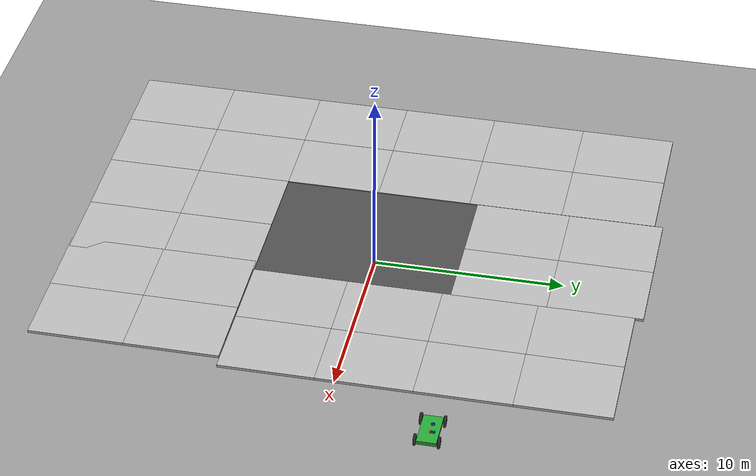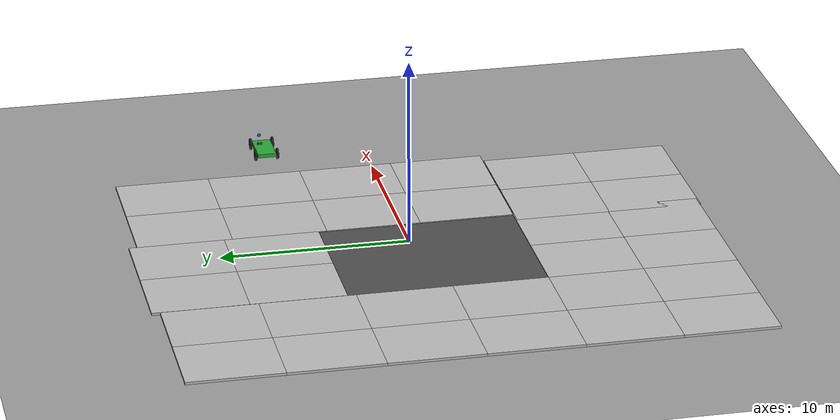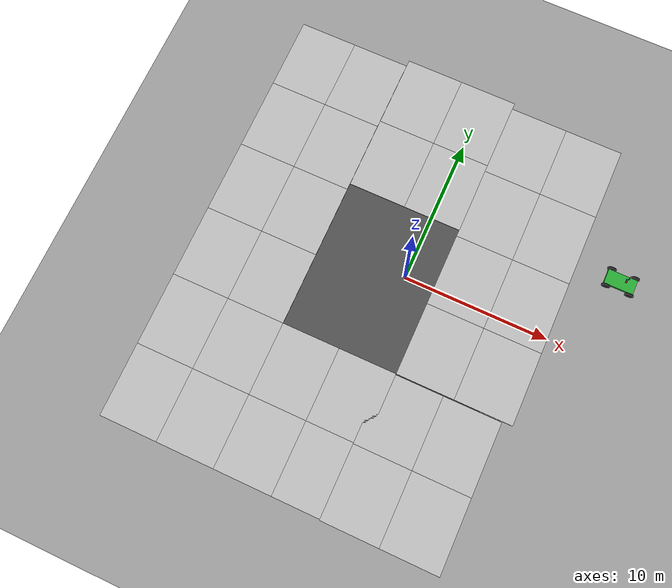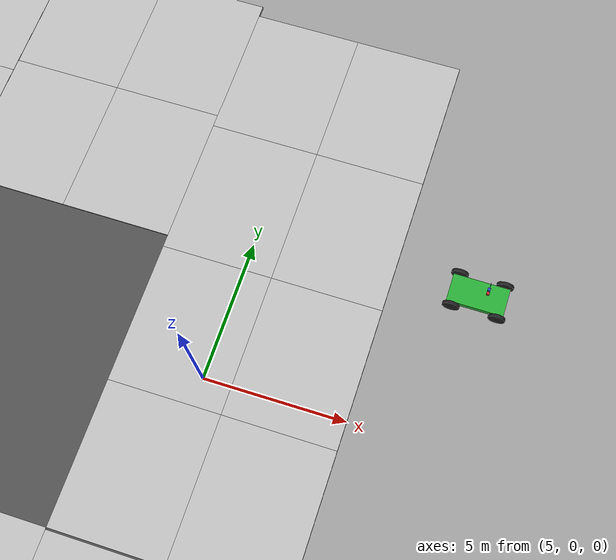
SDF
<sdf version="1.4">
 <world name="default">
  <light name="sun" type="directional">
   <pose>0 0 10 0 -0 0</pose>
   <diffuse>0.8 0.8 0.8 1</diffuse>
   <specular>0.2 0.2 0.2 1</specular>
   <attenuation>
    <range>1000</range>
    <constant>0.9</constant>
    <linear>0.01</linear>
    <quadratic>0.001</quadratic>
   </attenuation>
   <direction>-0.5 0.1 -0.9</direction>
  </light>
  <physics type="ode">
   <max_step_size>0.001</max_step_size>
   <real_time_factor>1</real_time_factor>
   <real_time_update_rate>1000</real_time_update_rate>
   <gravity>0 0 -9.8</gravity>
  </physics>
  <scene><ambient>0.4 0.4 0.4 1</ambient><background>0.7 0.7 0.7 1</background><shadows>1</shadows></scene>
  <spherical_coordinates>
   <surface_model>EARTH_WGS84</surface_model>
   <latitude_deg>0</latitude_deg>
   <longitude_deg>0</longitude_deg>
   <elevation>0</elevation>
   <heading_deg>0</heading_deg>
  </spherical_coordinates>
  <model name="ground_plane_0">
   <static>1</static>
   <link name="link">
    <collision name="collision">
     <geometry><plane><normal>0 0 1</normal><size>100 100</size></plane></geometry>
     <surface><friction><ode><mu>100</mu><mu2>50</mu2></ode></friction></surface>
    </collision>
    <visual name="visual">
     <cast_shadows>0</cast_shadows>
     <geometry><plane><normal>0 0 1</normal><size>100 100</size></plane></geometry>
     <material>
      <script><uri>file://media/materials/scripts/gazebo.material</uri><name>Gazebo/Grey</name></script>
     </material>
    </visual>
    <velocity_decay><linear>0</linear><angular>0</angular></velocity_decay>
   </link>
   <pose>-1 0 0 0 -0 0</pose>
  </model>
  <model name="mud_box">
   <static>1</static>
   <link name="link">
    <collision name="collision"><geometry><box><size>8 10 0.2</size></box></geometry></collision>
    <visual name="visual_1">
     <pose>-2 2.5 0 0 -0 0</pose>
     <cast_shadows>0</cast_shadows>
     <geometry><box><size>4 5 0.2</size></box></geometry>
     <material>
      <script>
       <uri>model://mud_box/materials/scripts</uri>
       <uri>model://mud_box/materials/textures</uri>
       <name>vrc/mud</name>
      </script>
     </material>
    </visual>
    <visual name="visual_2">
     <pose>2 2.5 0 0 -0 0</pose>
     <cast_shadows>0</cast_shadows>
     <geometry><box><size>4 5 0.2</size></box></geometry>
     <material>
      <script>
       <uri>model://mud_box/materials/scripts</uri>
       <uri>model://mud_box/materials/textures</uri>
       <name>vrc/mud</name>
      </script>
     </material>
    </visual>
    <visual name="visual_3">
     <pose>2 -2.5 0 0 -0 0</pose>
     <cast_shadows>0</cast_shadows>
     <geometry><box><size>4 5 0.2</size></box></geometry>
     <material>
      <script>
       <uri>model://mud_box/materials/scripts</uri>
       <uri>model://mud_box/materials/textures</uri>
       <name>vrc/mud</name>
      </script>
     </material>
    </visual>
    <visual name="visual_4">
     <pose>-2 -2.5 0 0 -0 0</pose>
     <cast_shadows>0</cast_shadows>
     <geometry><box><size>4 5 0.2</size></box></geometry>
     <material>
      <script>
       <uri>model://mud_box/materials/scripts</uri>
       <uri>model://mud_box/materials/textures</uri>
       <name>vrc/mud</name>
      </script>
     </material>
    </visual>
    <velocity_decay><linear>0</linear><angular>0</angular></velocity_decay>
   </link>
   <pose>6 -1 0 0 -0 0</pose>
  </model>
  <model name="mud_box_0">
   <static>1</static>
   <link name="link">
    <collision name="collision"><geometry><box><size>8 10 0.2</size></box></geometry></collision>
    <visual name="visual_1">
     <pose>-2 2.5 0 0 -0 0</pose>
     <cast_shadows>0</cast_shadows>
     <geometry><box><size>4 5 0.2</size></box></geometry>
     <material>
      <script>
       <uri>model://mud_box/materials/scripts</uri>
       <uri>model://mud_box/materials/textures</uri>
       <name>vrc/mud</name>
      </script>
     </material>
    </visual>
    <visual name="visual_2">
     <pose>2 2.5 0 0 -0 0</pose>
     <cast_shadows>0</cast_shadows>
     <geometry><box><size>4 5 0.2</size></box></geometry>
     <material>
      <script>
       <uri>model://mud_box/materials/scripts</uri>
       <uri>model://mud_box/materials/textures</uri>
       <name>vrc/mud</name>
      </script>
     </material>
    </visual>
    <visual name="visual_3">
     <pose>2 -2.5 0 0 -0 0</pose>
     <cast_shadows>0</cast_shadows>
     <geometry><box><size>4 5 0.2</size></box></geometry>
     <material>
      <script>
       <uri>model://mud_box/materials/scripts</uri>
       <uri>model://mud_box/materials/textures</uri>
       <name>vrc/mud</name>
      </script>
     </material>
    </visual>
    <visual name="visual_4">
     <pose>-2 -2.5 0 0 -0 0</pose>
     <cast_shadows>0</cast_shadows>
     <geometry><box><size>4 5 0.2</size></box></geometry>
     <material>
      <script>
       <uri>model://mud_box/materials/scripts</uri>
       <uri>model://mud_box/materials/textures</uri>
       <name>vrc/mud</name>
      </script>
     </material>
    </visual>
    <velocity_decay><linear>0</linear><angular>0</angular></velocity_decay>
   </link>
   <pose>5.29405 -11.0591 0 0 -0 0</pose>
  </model>
  <model name="mud_box_2">
   <static>1</static>
   <link name="link">
    <collision name="collision"><geometry><box><size>8 10 0.2</size></box></geometry></collision>
    <visual name="visual_1">
     <pose>-2 2.5 0 0 -0 0</pose>
     <cast_shadows>0</cast_shadows>
     <geometry><box><size>4 5 0.2</size></box></geometry>
     <material>
      <script>
       <uri>model://mud_box/materials/scripts</uri>
       <uri>model://mud_box/materials/textures</uri>
       <name>vrc/mud</name>
      </script>
     </material>
    </visual>
    <visual name="visual_2">
     <pose>2 2.5 0 0 -0 0</pose>
     <cast_shadows>0</cast_shadows>
     <geometry><box><size>4 5 0.2</size></box></geometry>
     <material>
      <script>
       <uri>model://mud_box/materials/scripts</uri>
       <uri>model://mud_box/materials/textures</uri>
       <name>vrc/mud</name>
      </script>
     </material>
    </visual>
    <visual name="visual_3">
     <pose>2 -2.5 0 0 -0 0</pose>
     <cast_shadows>0</cast_shadows>
     <geometry><box><size>4 5 0.2</size></box></geometry>
     <material>
      <script>
       <uri>model://mud_box/materials/scripts</uri>
       <uri>model://mud_box/materials/textures</uri>
       <name>vrc/mud</name>
      </script>
     </material>
    </visual>
    <visual name="visual_4">
     <pose>-2 -2.5 0 0 -0 0</pose>
     <cast_shadows>0</cast_shadows>
     <geometry><box><size>4 5 0.2</size></box></geometry>
     <material>
      <script>
       <uri>model://mud_box/materials/scripts</uri>
       <uri>model://mud_box/materials/textures</uri>
       <name>vrc/mud</name>
      </script>
     </material>
    </visual>
    <velocity_decay><linear>0</linear><angular>0</angular></velocity_decay>
   </link>
   <pose>-2 -11 0 0 -0 0</pose>
  </model>
  <model name="mud_box_3">
   <static>1</static>
   <link name="link">
    <collision name="collision"><geometry><box><size>8 10 0.2</size></box></geometry></collision>
    <visual name="visual_1">
     <pose>-2 2.5 0 0 -0 0</pose>
     <cast_shadows>0</cast_shadows>
     <geometry><box><size>4 5 0.2</size></box></geometry>
     <material>
      <script>
       <uri>model://mud_box/materials/scripts</uri>
       <uri>model://mud_box/materials/textures</uri>
       <name>vrc/mud</name>
      </script>
     </material>
    </visual>
    <visual name="visual_2">
     <pose>2 2.5 0 0 -0 0</pose>
     <cast_shadows>0</cast_shadows>
     <geometry><box><size>4 5 0.2</size></box></geometry>
     <material>
      <script>
       <uri>model://mud_box/materials/scripts</uri>
       <uri>model://mud_box/materials/textures</uri>
       <name>vrc/mud</name>
      </script>
     </material>
    </visual>
    <visual name="visual_3">
     <pose>2 -2.5 0 0 -0 0</pose>
     <cast_shadows>0</cast_shadows>
     <geometry><box><size>4 5 0.2</size></box></geometry>
     <material>
      <script>
       <uri>model://mud_box/materials/scripts</uri>
       <uri>model://mud_box/materials/textures</uri>
       <name>vrc/mud</name>
      </script>
     </material>
    </visual>
    <visual name="visual_4">
     <pose>-2 -2.5 0 0 -0 0</pose>
     <cast_shadows>0</cast_shadows>
     <geometry><box><size>4 5 0.2</size></box></geometry>
     <material>
      <script>
       <uri>model://mud_box/materials/scripts</uri>
       <uri>model://mud_box/materials/textures</uri>
       <name>vrc/mud</name>
      </script>
     </material>
    </visual>
    <velocity_decay><linear>0</linear><angular>0</angular></velocity_decay>
   </link>
   <pose>-1.98793 9.43576 0 0 -0 0</pose>
  </model>
  <model name="mud_box_4">
   <static>1</static>
   <link name="link">
    <collision name="collision"><geometry><box><size>8 10 0.2</size></box></geometry></collision>
    <visual name="visual_1">
     <pose>-2 2.5 0 0 -0 0</pose>
     <cast_shadows>0</cast_shadows>
     <geometry><box><size>4 5 0.2</size></box></geometry>
     <material>
      <script>
       <uri>model://mud_box/materials/scripts</uri>
       <uri>model://mud_box/materials/textures</uri>
       <name>vrc/mud</name>
      </script>
     </material>
    </visual>
    <visual name="visual_2">
     <pose>2 2.5 0 0 -0 0</pose>
     <cast_shadows>0</cast_shadows>
     <geometry><box><size>4 5 0.2</size></box></geometry>
     <material>
      <script>
       <uri>model://mud_box/materials/scripts</uri>
       <uri>model://mud_box/materials/textures</uri>
       <name>vrc/mud</name>
      </script>
     </material>
    </visual>
    <visual name="visual_3">
     <pose>2 -2.5 0 0 -0 0</pose>
     <cast_shadows>0</cast_shadows>
     <geometry><box><size>4 5 0.2</size></box></geometry>
     <material>
      <script>
       <uri>model://mud_box/materials/scripts</uri>
       <uri>model://mud_box/materials/textures</uri>
       <name>vrc/mud</name>
      </script>
     </material>
    </visual>
    <visual name="visual_4">
     <pose>-2 -2.5 0 0 -0 0</pose>
     <cast_shadows>0</cast_shadows>
     <geometry><box><size>4 5 0.2</size></box></geometry>
     <material>
      <script>
       <uri>model://mud_box/materials/scripts</uri>
       <uri>model://mud_box/materials/textures</uri>
       <name>vrc/mud</name>
      </script>
     </material>
    </visual>
    <velocity_decay><linear>0</linear><angular>0</angular></velocity_decay>
   </link>
   <pose>6 9 0 0 -0 0</pose>
  </model>
  <model name="mud_box_5">
   <static>1</static>
   <link name="link">
    <collision name="collision"><geometry><box><size>8 10 0.2</size></box></geometry></collision>
    <visual name="visual_1">
     <pose>-2 2.5 0 0 -0 0</pose>
     <cast_shadows>0</cast_shadows>
     <geometry><box><size>4 5 0.2</size></box></geometry>
     <material>
      <script>
       <uri>model://mud_box/materials/scripts</uri>
       <uri>model://mud_box/materials/textures</uri>
       <name>vrc/mud</name>
      </script>
     </material>
    </visual>
    <visual name="visual_2">
     <pose>2 2.5 0 0 -0 0</pose>
     <cast_shadows>0</cast_shadows>
     <geometry><box><size>4 5 0.2</size></box></geometry>
     <material>
      <script>
       <uri>model://mud_box/materials/scripts</uri>
       <uri>model://mud_box/materials/textures</uri>
       <name>vrc/mud</name>
      </script>
     </material>
    </visual>
    <visual name="visual_3">
     <pose>2 -2.5 0 0 -0 0</pose>
     <cast_shadows>0</cast_shadows>
     <geometry><box><size>4 5 0.2</size></box></geometry>
     <material>
      <script>
       <uri>model://mud_box/materials/scripts</uri>
       <uri>model://mud_box/materials/textures</uri>
       <name>vrc/mud</name>
      </script>
     </material>
    </visual>
    <visual name="visual_4">
     <pose>-2 -2.5 0 0 -0 0</pose>
     <cast_shadows>0</cast_shadows>
     <geometry><box><size>4 5 0.2</size></box></geometry>
     <material>
      <script>
       <uri>model://mud_box/materials/scripts</uri>
       <uri>model://mud_box/materials/textures</uri>
       <name>vrc/mud</name>
      </script>
     </material>
    </visual>
    <velocity_decay><linear>0</linear><angular>0</angular></velocity_decay>
   </link>
   <pose>-10 9 0 0 -0 0</pose>
  </model>
  <model name="mud_box_6">
   <static>1</static>
   <link name="link">
    <collision name="collision"><geometry><box><size>8 10 0.2</size></box></geometry></collision>
    <visual name="visual_1">
     <pose>-2 2.5 0 0 -0 0</pose>
     <cast_shadows>0</cast_shadows>
     <geometry><box><size>4 5 0.2</size></box></geometry>
     <material>
      <script>
       <uri>model://mud_box/materials/scripts</uri>
       <uri>model://mud_box/materials/textures</uri>
       <name>vrc/mud</name>
      </script>
     </material>
    </visual>
    <visual name="visual_2">
     <pose>2 2.5 0 0 -0 0</pose>
     <cast_shadows>0</cast_shadows>
     <geometry><box><size>4 5 0.2</size></box></geometry>
     <material>
      <script>
       <uri>model://mud_box/materials/scripts</uri>
       <uri>model://mud_box/materials/textures</uri>
       <name>vrc/mud</name>
      </script>
     </material>
    </visual>
    <visual name="visual_3">
     <pose>2 -2.5 0 0 -0 0</pose>
     <cast_shadows>0</cast_shadows>
     <geometry><box><size>4 5 0.2</size></box></geometry>
     <material>
      <script>
       <uri>model://mud_box/materials/scripts</uri>
       <uri>model://mud_box/materials/textures</uri>
       <name>vrc/mud</name>
      </script>
     </material>
    </visual>
    <visual name="visual_4">
     <pose>-2 -2.5 0 0 -0 0</pose>
     <cast_shadows>0</cast_shadows>
     <geometry><box><size>4 5 0.2</size></box></geometry>
     <material>
      <script>
       <uri>model://mud_box/materials/scripts</uri>
       <uri>model://mud_box/materials/textures</uri>
       <name>vrc/mud</name>
      </script>
     </material>
    </visual>
    <velocity_decay><linear>0</linear><angular>0</angular></velocity_decay>
   </link>
   <pose>-10 -1 0 0 -0 0</pose>
  </model>
  <model name="mud_box_7">
   <static>1</static>
   <link name="link">
    <collision name="collision"><geometry><box><size>8 10 0.2</size></box></geometry></collision>
    <visual name="visual_1">
     <pose>-2 2.5 0 0 -0 0</pose>
     <cast_shadows>0</cast_shadows>
     <geometry><box><size>4 5 0.2</size></box></geometry>
     <material>
      <script>
       <uri>model://mud_box/materials/scripts</uri>
       <uri>model://mud_box/materials/textures</uri>
       <name>vrc/mud</name>
      </script>
     </material>
    </visual>
    <visual name="visual_2">
     <pose>2 2.5 0 0 -0 0</pose>
     <cast_shadows>0</cast_shadows>
     <geometry><box><size>4 5 0.2</size></box></geometry>
     <material>
      <script>
       <uri>model://mud_box/materials/scripts</uri>
       <uri>model://mud_box/materials/textures</uri>
       <name>vrc/mud</name>
      </script>
     </material>
    </visual>
    <visual name="visual_3">
     <pose>2 -2.5 0 0 -0 0</pose>
     <cast_shadows>0</cast_shadows>
     <geometry><box><size>4 5 0.2</size></box></geometry>
     <material>
      <script>
       <uri>model://mud_box/materials/scripts</uri>
       <uri>model://mud_box/materials/textures</uri>
       <name>vrc/mud</name>
      </script>
     </material>
    </visual>
    <visual name="visual_4">
     <pose>-2 -2.5 0 0 -0 0</pose>
     <cast_shadows>0</cast_shadows>
     <geometry><box><size>4 5 0.2</size></box></geometry>
     <material>
      <script>
       <uri>model://mud_box/materials/scripts</uri>
       <uri>model://mud_box/materials/textures</uri>
       <name>vrc/mud</name>
      </script>
     </material>
    </visual>
    <velocity_decay><linear>0</linear><angular>0</angular></velocity_decay>
   </link>
   <pose>-10 -11 0 0 -0 0</pose>
  </model>
  <model name="car_0">
   <link name="chassis">
    <pose>0 0 0.3 0 -0 0</pose>
    <collision name="collision"><geometry><box><size>2 1 0.2</size></box></geometry></collision>
    <visual name="visual">
     <geometry><box><size>2 1 0.2</size></box></geometry>
     <material>
      <script><uri>file://media/materials/scripts/gazebo.material</uri><name>Gazebo/Green</name></script>
     </material>
    </visual>
    <velocity_decay><linear>0</linear><angular>0</angular></velocity_decay>
    <inertial>
     <inertia><ixx>1</ixx><ixy>0</ixy><ixz>0</ixz><iyy>1</iyy><iyz>0</iyz><izz>1</izz></inertia>
     <mass>1</mass>
    </inertial>
   </link>
   <link name="front_left_wheel">
    <pose>0.8 0.6 0.3 0 1.5707 1.5707</pose>
    <collision name="collision">
     <geometry><cylinder><radius>0.3</radius><length>0.1</length></cylinder></geometry>
    </collision>
    <visual name="visual">
     <geometry><cylinder><radius>0.3</radius><length>0.1</length></cylinder></geometry>
     <material>
      <script><uri>file://media/materials/scripts/gazebo.material</uri><name>Gazebo/Black</name></script>
     </material>
    </visual>
    <velocity_decay><linear>0</linear><angular>0</angular></velocity_decay>
    <inertial>
     <inertia><ixx>1</ixx><ixy>0</ixy><ixz>0</ixz><iyy>1</iyy><iyz>0</iyz><izz>1</izz></inertia>
     <mass>1</mass>
    </inertial>
   </link>
   <link name="front_right_wheel">
    <pose>0.8 -0.6 0.3 0 1.5707 1.5707</pose>
    <collision name="collision">
     <geometry><cylinder><radius>0.3</radius><length>0.1</length></cylinder></geometry>
    </collision>
    <visual name="visual">
     <geometry><cylinder><radius>0.3</radius><length>0.1</length></cylinder></geometry>
     <material>
      <script><uri>file://media/materials/scripts/gazebo.material</uri><name>Gazebo/Black</name></script>
     </material>
    </visual>
    <velocity_decay><linear>0</linear><angular>0</angular></velocity_decay>
    <inertial>
     <inertia><ixx>1</ixx><ixy>0</ixy><ixz>0</ixz><iyy>1</iyy><iyz>0</iyz><izz>1</izz></inertia>
     <mass>1</mass>
    </inertial>
   </link>
   <link name="back_right_wheel">
    <pose>-0.8 -0.6 0.3 0 1.5707 1.5707</pose>
    <collision name="collision">
     <geometry><cylinder><radius>0.3</radius><length>0.1</length></cylinder></geometry>
    </collision>
    <visual name="visual">
     <geometry><cylinder><radius>0.3</radius><length>0.1</length></cylinder></geometry>
     <material>
      <script><uri>file://media/materials/scripts/gazebo.material</uri><name>Gazebo/Black</name></script>
     </material>
    </visual>
    <velocity_decay><linear>0</linear><angular>0</angular></velocity_decay>
    <inertial>
     <inertia><ixx>1</ixx><ixy>0</ixy><ixz>0</ixz><iyy>1</iyy><iyz>0</iyz><izz>1</izz></inertia>
     <mass>1</mass>
    </inertial>
   </link>
   <link name="back_left_wheel">
    <pose>-0.8 0.6 0.3 0 1.5707 1.5707</pose>
    <collision name="collision">
     <geometry><cylinder><radius>0.3</radius><length>0.1</length></cylinder></geometry>
    </collision>
    <visual name="visual">
     <geometry><cylinder><radius>0.3</radius><length>0.1</length></cylinder></geometry>
     <material>
      <script><uri>file://media/materials/scripts/gazebo.material</uri><name>Gazebo/Black</name></script>
     </material>
    </visual>
    <velocity_decay><linear>0</linear><angular>0</angular></velocity_decay>
    <inertial>
     <inertia><ixx>1</ixx><ixy>0</ixy><ixz>0</ixz><iyy>1</iyy><iyz>0</iyz><izz>1</izz></inertia>
     <mass>1</mass>
    </inertial>
   </link>
   <link name="gas_pedal">
    <pose>0.3 0.1 0.5 0 -0 0</pose>
    <collision name="collision"><geometry><box><size>0.1 0.1 0.1</size></box></geometry></collision>
    <visual name="visual">
     <geometry><box><size>0.1 0.1 0.1</size></box></geometry>
     <material>
      <script><uri>file://media/materials/scripts/gazebo.material</uri><name>Gazebo/Red</name></script>
     </material>
    </visual>
    <velocity_decay><linear>0</linear><angular>0</angular></velocity_decay>
    <inertial>
     <inertia><ixx>1</ixx><ixy>0</ixy><ixz>0</ixz><iyy>1</iyy><iyz>0</iyz><izz>1</izz></inertia>
     <mass>1</mass>
    </inertial>
   </link>
   <link name="brake_pedal">
    <pose>0.3 0.25 0.5 0 -0 0</pose>
    <collision name="collision"><geometry><box><size>0.1 0.1 0.1</size></box></geometry></collision>
    <visual name="visual">
     <geometry><box><size>0.1 0.1 0.1</size></box></geometry>
     <material>
      <script><uri>file://media/materials/scripts/gazebo.material</uri><name>Gazebo/Blue</name></script>
     </material>
    </visual>
    <velocity_decay><linear>0</linear><angular>0</angular></velocity_decay>
    <inertial>
     <inertia><ixx>1</ixx><ixy>0</ixy><ixz>0</ixz><iyy>1</iyy><iyz>0</iyz><izz>1</izz></inertia>
     <mass>1</mass>
    </inertial>
   </link>
   <link name="steering_wheel">
    <pose>0.3 0.2 1 0 1.5707 0</pose>
    <collision name="collision">
     <geometry><cylinder><radius>0.1</radius><length>0.01</length></cylinder></geometry>
    </collision>
    <visual name="visual">
     <geometry><cylinder><radius>0.1</radius><length>0.01</length></cylinder></geometry>
     <material>
      <script><uri>file://media/materials/scripts/gazebo.material</uri><name>Gazebo/Blue</name></script>
     </material>
    </visual>
    <velocity_decay><linear>0</linear><angular>0</angular></velocity_decay>
    <inertial>
     <inertia><ixx>1</ixx><ixy>0</ixy><ixz>0</ixz><iyy>1</iyy><iyz>0</iyz><izz>1</izz></inertia>
     <mass>1</mass>
    </inertial>
   </link>
   <joint name="gas_joint" type="prismatic">
    <parent>chassis</parent>
    <child>gas_pedal</child>
    <axis><xyz>1 0 0</xyz><limit><lower>0</lower><upper>0.2</upper></limit></axis>
   </joint>
   <joint name="brake_joint" type="prismatic">
    <parent>chassis</parent>
    <child>brake_pedal</child>
    <axis><xyz>1 0 0</xyz><limit><lower>0</lower><upper>0.2</upper></limit></axis>
   </joint>
   <joint name="steering_joint" type="revolute">
    <parent>chassis</parent>
    <child>steering_wheel</child>
    <axis><xyz>1 0 0</xyz><limit><lower>-7.853</lower><upper>7.853</upper></limit></axis>
   </joint>
   <joint name="front_left_joint" type="revolute2">
    <parent>chassis</parent>
    <child>front_left_wheel</child>
    <axis><xyz>0 0 1</xyz><limit><lower>-0.00168762</lower><upper>-0.00168762</upper></limit></axis>
    <axis2><xyz>0 1 0</xyz></axis2>
    <physics><ode><limit><cfm>0</cfm><erp>0.9</erp></limit></ode></physics>
   </joint>
   <joint name="front_right_joint" type="revolute2">
    <parent>chassis</parent>
    <child>front_right_wheel</child>
    <axis><xyz>0 0 1</xyz><limit><lower>-0.00168762</lower><upper>-0.00168762</upper></limit></axis>
    <axis2><xyz>0 1 0</xyz></axis2>
    <physics><ode><limit><cfm>0</cfm><erp>0.9</erp></limit></ode></physics>
   </joint>
   <joint name="back_right_joint" type="revolute2">
    <parent>chassis</parent>
    <child>back_right_wheel</child>
    <axis><xyz>0 0 1</xyz><limit><lower>0</lower><upper>0</upper></limit></axis>
    <axis2><xyz>0 1 0</xyz></axis2>
    <physics><ode><limit><cfm>0</cfm><erp>0.9</erp></limit></ode></physics>
   </joint>
   <joint name="back_left_joint" type="revolute2">
    <parent>chassis</parent>
    <child>back_left_wheel</child>
    <axis><xyz>0 0 1</xyz><limit><lower>0</lower><upper>0</upper></limit></axis>
    <axis2><xyz>0 1 0</xyz></axis2>
    <physics><ode><limit><cfm>0</cfm><erp>0.9</erp></limit></ode></physics>
   </joint>
   <plugin name="vehicle" filename="libVehiclePlugin.so">
    <front_left>front_left_joint</front_left>
    <front_right>front_right_joint</front_right>
    <back_left>back_left_joint</back_left>
    <back_right>back_right_joint</back_right>
    <gas>gas_joint</gas>
    <brake>brake_joint</brake>
    <steering>steering_joint</steering>
    <front_power>10</front_power>
    <rear_power>10</rear_power>
    <tire_angle_range>0.5</tire_angle_range>
    <max_speed>10</max_speed>
    <aero_load>0.1</aero_load>
   </plugin>
   <pose>12.9697 5.42567 -0.002762 -0.000814 0.002744 -0.000613</pose>
   <static>0</static>
  </model>
  <model name="asphalt_plane">
   <static>1</static>
   <link name="link">
    <collision name="collision"><geometry><box><size>20 20 0.1</size></box></geometry></collision>
    <visual name="visual">
     <cast_shadows>0</cast_shadows>
     <geometry><box><size>20 20 0.1</size></box></geometry>
     <material>
      <script>
       <uri>model://asphalt_plane/materials/scripts</uri>
       <uri>model://asphalt_plane/materials/textures</uri>
       <name>vrc/asphalt</name>
      </script>
     </material>
    </visual>
    <velocity_decay><linear>0</linear><angular>0</angular></velocity_decay>
   </link>
   <pose>-2.18013 0.193304 0 0 -0 0</pose>
  </model>
 </world>
</sdf>
